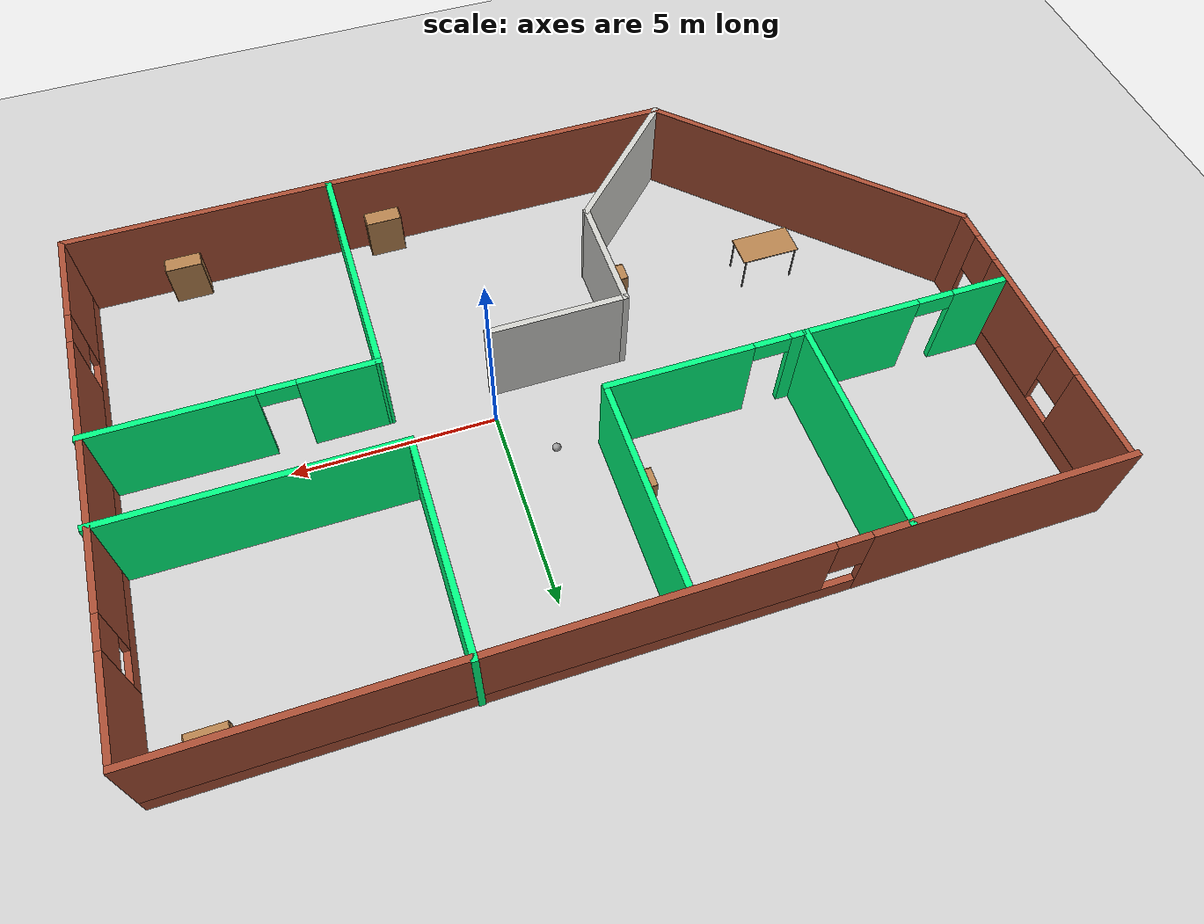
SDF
<sdf version="1.6">
 <world name="default">
  <plugin name="hello" filename="libhello.so"/>
  <light name="sun" type="directional">
   <pose>0 0 10 0 -0 0</pose>
   <diffuse>0.8 0.8 0.8 1</diffuse>
   <specular>0.2 0.2 0.2 1</specular>
   <attenuation>
    <range>1000</range>
    <constant>0.9</constant>
    <linear>0.01</linear>
    <quadratic>0.001</quadratic>
   </attenuation>
   <direction>-0.5 0.1 -0.9</direction>
  </light>
  <model name="ground_plane">
   <static>1</static>
   <link name="link">
    <collision name="collision">
     <geometry><plane><normal>0 0 1</normal><size>100 100</size></plane></geometry>
     <surface>
      <contact><collide_bitmask>65535</collide_bitmask></contact>
      <friction><ode><mu>100</mu><mu2>50</mu2></ode></friction>
     </surface>
    </collision>
    <visual name="visual">
     <cast_shadows>0</cast_shadows>
     <geometry><plane><normal>0 0 1</normal><size>100 100</size></plane></geometry>
     <material>
      <script><uri>file://media/materials/scripts/gazebo.material</uri><name>Gazebo/Grey</name></script>
     </material>
    </visual>
   </link>
  </model>
  <gravity>0 0 -9.8</gravity>
  <magnetic_field>6e-06 2.3e-05 -4.2e-05</magnetic_field>
  <atmosphere type="adiabatic"/>
  <physics name="default_physics" default="0" type="ode">
   <max_step_size>0.001</max_step_size>
   <real_time_factor>1</real_time_factor>
   <real_time_update_rate>1000</real_time_update_rate>
  </physics>
  <scene><ambient>0.4 0.4 0.4 1</ambient><background>0.7 0.7 0.7 1</background><shadows>1</shadows></scene>
  <spherical_coordinates>
   <surface_model>EARTH_WGS84</surface_model>
   <latitude_deg>0</latitude_deg>
   <longitude_deg>0</longitude_deg>
   <elevation>0</elevation>
   <heading_deg>0</heading_deg>
  </spherical_coordinates>
  <model name="mybuilding">
   <pose>-1.67201 0.0074 0 0 -0 0</pose>
   <link name="Door_3">
    <collision name="Door_3_Collision">
     <geometry><box><size>0.9 0.17 2</size></box></geometry>
     <pose>0 0 1 0 -0 0</pose>
    </collision>
    <visual name="Door_3_Visual">
     <pose>0 0 1 0 -0 0</pose>
     <geometry><box><size>0.9 0.17 2</size></box></geometry>
     <material>
      <script><uri>file://media/materials/scripts/gazebo.material</uri><name>Gazebo/Grey</name></script>
     </material>
    </visual>
    <pose>5.32033 1.38259 0 0 -0 0</pose>
   </link>
   <link name="Wall_10">
    <pose>-7.95176 1.44932 0 0 -0 3.14159</pose>
    <visual name="Wall_10_Visual_0">
     <pose>-1.15845 0 1.25 0 -0 0</pose>
     <geometry><box><size>2.93311 0.15 2.5</size></box></geometry>
     <material>
      <script><uri>file://media/materials/scripts/gazebo.material</uri><name>Gazebo/Grey</name></script>
      <ambient>0 1 0.498039 1</ambient>
     </material>
     <meta><layer>0</layer></meta>
    </visual>
    <collision name="Wall_10_Collision_0">
     <geometry><box><size>2.93311 0.15 2.5</size></box></geometry>
     <pose>-1.15845 0 1.25 0 -0 0</pose>
    </collision>
    <visual name="Wall_10_Visual_1">
     <pose>1.91655 0 1.25 0 -0 0</pose>
     <geometry><box><size>1.41689 0.15 2.5</size></box></geometry>
     <material>
      <script><uri>file://media/materials/scripts/gazebo.material</uri><name>Gazebo/Grey</name></script>
      <ambient>0 1 0.498039 1</ambient>
     </material>
     <meta><layer>0</layer></meta>
    </visual>
    <collision name="Wall_10_Collision_1">
     <geometry><box><size>1.41689 0.15 2.5</size></box></geometry>
     <pose>1.91655 0 1.25 0 -0 0</pose>
    </collision>
    <visual name="Wall_10_Visual_2">
     <pose>0.758107 0 2.25 0 -0 0</pose>
     <geometry><box><size>0.9 0.15 0.5</size></box></geometry>
     <material>
      <script><uri>file://media/materials/scripts/gazebo.material</uri><name>Gazebo/Grey</name></script>
      <ambient>0 1 0.498039 1</ambient>
     </material>
     <meta><layer>0</layer></meta>
    </visual>
    <collision name="Wall_10_Collision_2">
     <geometry><box><size>0.9 0.15 0.5</size></box></geometry>
     <pose>0.758107 0 2.25 0 -0 0</pose>
    </collision>
   </link>
   <link name="Wall_12">
    <pose>-2.97676 1.44932 0 0 -0 0</pose>
    <visual name="Wall_12_Visual_0">
     <pose>-2.2652 0 1.25 0 -0 0</pose>
     <geometry><box><size>0.469596 0.15 2.5</size></box></geometry>
     <material>
      <script><uri>file://media/materials/scripts/gazebo.material</uri><name>Gazebo/Grey</name></script>
      <ambient>0 1 0.498039 1</ambient>
     </material>
     <meta><layer>0</layer></meta>
    </visual>
    <collision name="Wall_12_Collision_0">
     <geometry><box><size>0.469596 0.15 2.5</size></box></geometry>
     <pose>-2.2652 0 1.25 0 -0 0</pose>
    </collision>
    <visual name="Wall_12_Visual_1">
     <pose>0.684798 0 1.25 0 -0 0</pose>
     <geometry><box><size>3.6304 0.15 2.5</size></box></geometry>
     <material>
      <script><uri>file://media/materials/scripts/gazebo.material</uri><name>Gazebo/Grey</name></script>
      <ambient>0 1 0.498039 1</ambient>
     </material>
     <meta><layer>0</layer></meta>
    </visual>
    <collision name="Wall_12_Collision_1">
     <geometry><box><size>3.6304 0.15 2.5</size></box></geometry>
     <pose>0.684798 0 1.25 0 -0 0</pose>
    </collision>
    <visual name="Wall_12_Visual_2">
     <pose>-1.5804 0 2.25 0 -0 0</pose>
     <geometry><box><size>0.9 0.15 0.5</size></box></geometry>
     <material>
      <script><uri>file://media/materials/scripts/gazebo.material</uri><name>Gazebo/Grey</name></script>
      <ambient>0 1 0.498039 1</ambient>
     </material>
     <meta><layer>0</layer></meta>
    </visual>
    <collision name="Wall_12_Collision_2">
     <geometry><box><size>0.9 0.15 0.5</size></box></geometry>
     <pose>-1.5804 0 2.25 0 -0 0</pose>
    </collision>
   </link>
   <link name="Wall_13">
    <collision name="Wall_13_Collision">
     <geometry><box><size>5.25 0.15 2.5</size></box></geometry>
     <pose>0 0 1.25 0 -0 0</pose>
    </collision>
    <visual name="Wall_13_Visual">
     <pose>0 0 1.25 0 -0 0</pose>
     <geometry><box><size>5.25 0.15 2.5</size></box></geometry>
     <material>
      <script><uri>file://media/materials/scripts/gazebo.material</uri><name>Gazebo/Grey</name></script>
      <ambient>0 1 0.498039 1</ambient>
     </material>
     <meta><layer>0</layer></meta>
    </visual>
    <pose>-0.551764 3.99932 0 0 -0 1.5708</pose>
   </link>
   <link name="Wall_15">
    <collision name="Wall_15_Collision">
     <geometry><box><size>5.25 0.15 2.5</size></box></geometry>
     <pose>0 0 1.25 0 -0 0</pose>
    </collision>
    <visual name="Wall_15_Visual">
     <pose>0 0 1.25 0 -0 0</pose>
     <geometry><box><size>5.25 0.15 2.5</size></box></geometry>
     <material>
      <script><uri>file://media/materials/scripts/gazebo.material</uri><name>Gazebo/Grey</name></script>
      <ambient>0 1 0.498039 1</ambient>
     </material>
     <meta><layer>0</layer></meta>
    </visual>
    <pose>3.86573 4.02722 0 0 0 -1.5708</pose>
   </link>
   <link name="Wall_16">
    <collision name="Wall_16_Collision">
     <geometry><box><size>7 0.15 2.5</size></box></geometry>
     <pose>0 0 1.25 0 -0 0</pose>
    </collision>
    <visual name="Wall_16_Visual">
     <pose>0 0 1.25 0 -0 0</pose>
     <geometry><box><size>7 0.15 2.5</size></box></geometry>
     <material>
      <script><uri>file://media/materials/scripts/gazebo.material</uri><name>Gazebo/Grey</name></script>
      <ambient>0 1 0.498039 1</ambient>
     </material>
     <meta><layer>0</layer></meta>
    </visual>
    <pose>7.29073 1.47722 0 0 -0 0</pose>
   </link>
   <link name="Wall_18">
    <pose>7.3796 -0.753441 0 0 -0 3.14159</pose>
    <visual name="Wall_18_Visual_0">
     <pose>-1.41679 0 1.25 0 -0 0</pose>
     <geometry><box><size>3.91643 0.15 2.5</size></box></geometry>
     <material>
      <script><uri>file://media/materials/scripts/gazebo.material</uri><name>Gazebo/Grey</name></script>
      <ambient>0 1 0.498039 1</ambient>
     </material>
     <meta><layer>0</layer></meta>
    </visual>
    <collision name="Wall_18_Collision_0">
     <geometry><box><size>3.91643 0.15 2.5</size></box></geometry>
     <pose>-1.41679 0 1.25 0 -0 0</pose>
    </collision>
    <visual name="Wall_18_Visual_1">
     <pose>2.40821 0 1.25 0 -0 0</pose>
     <geometry><box><size>1.93357 0.15 2.5</size></box></geometry>
     <material>
      <script><uri>file://media/materials/scripts/gazebo.material</uri><name>Gazebo/Grey</name></script>
      <ambient>0 1 0.498039 1</ambient>
     </material>
     <meta><layer>0</layer></meta>
    </visual>
    <collision name="Wall_18_Collision_1">
     <geometry><box><size>1.93357 0.15 2.5</size></box></geometry>
     <pose>2.40821 0 1.25 0 -0 0</pose>
    </collision>
    <visual name="Wall_18_Visual_2">
     <pose>0.991428 0 2.25 0 -0 0</pose>
     <geometry><box><size>0.9 0.15 0.5</size></box></geometry>
     <material>
      <script><uri>file://media/materials/scripts/gazebo.material</uri><name>Gazebo/Grey</name></script>
      <ambient>0 1 0.498039 1</ambient>
     </material>
     <meta><layer>0</layer></meta>
    </visual>
    <collision name="Wall_18_Collision_2">
     <geometry><box><size>0.9 0.15 0.5</size></box></geometry>
     <pose>0.991428 0 2.25 0 -0 0</pose>
    </collision>
   </link>
   <link name="Wall_19">
    <collision name="Wall_19_Collision">
     <geometry><box><size>5.88375 0.15 2.5</size></box></geometry>
     <pose>0 0 1.25 0 -0 0</pose>
    </collision>
    <visual name="Wall_19_Visual">
     <pose>0 0 1.25 0 -0 0</pose>
     <geometry><box><size>5.88375 0.15 2.5</size></box></geometry>
     <material>
      <script><uri>file://media/materials/scripts/gazebo.material</uri><name>Gazebo/Grey</name></script>
      <ambient>0 1 0.498039 1</ambient>
     </material>
     <meta><layer>0</layer></meta>
    </visual>
    <pose>4.08291 -3.62031 0 0 0 -1.56964</pose>
   </link>
   <link name="Wall_21">
    <collision name="Wall_21_Collision">
     <geometry><box><size>4.25 0.15 2.5</size></box></geometry>
     <pose>0 0 1.25 0 -0 0</pose>
    </collision>
    <visual name="Wall_21_Visual">
     <pose>0 0 1.25 0 -0 0</pose>
     <geometry><box><size>4.25 0.15 2.5</size></box></geometry>
     <material>
      <script><uri>file://media/materials/scripts/gazebo.material</uri><name>Gazebo/CeilingTiled</name></script>
      <ambient>0 0 1 1</ambient>
     </material>
     <meta><layer>0</layer></meta>
    </visual>
    <pose>-3.26617 -5.09658 0 0 -0 0.785398</pose>
   </link>
   <link name="Wall_22">
    <collision name="Wall_22_Collision">
     <geometry><box><size>3 0.15 2.5</size></box></geometry>
     <pose>0 0 1.25 0 -0 0</pose>
    </collision>
    <visual name="Wall_22_Visual">
     <pose>0 0 1.25 0 -0 0</pose>
     <geometry><box><size>3 0.15 2.5</size></box></geometry>
     <material>
      <script><uri>file://media/materials/scripts/gazebo.material</uri><name>Gazebo/CeilingTiled</name></script>
      <ambient>0 0 1 1</ambient>
     </material>
     <meta><layer>0</layer></meta>
    </visual>
    <pose>-1.8166 -2.22201 0 0 -0 1.5708</pose>
   </link>
   <link name="Wall_23">
    <collision name="Wall_23_Collision">
     <geometry><box><size>3.5 0.15 2.5</size></box></geometry>
     <pose>0 0 1.25 0 -0 0</pose>
    </collision>
    <visual name="Wall_23_Visual">
     <pose>0 0 1.25 0 -0 0</pose>
     <geometry><box><size>3.5 0.15 2.5</size></box></geometry>
     <material>
      <script><uri>file://media/materials/scripts/gazebo.material</uri><name>Gazebo/CeilingTiled</name></script>
      <ambient>0 0 1 1</ambient>
     </material>
     <meta><layer>0</layer></meta>
    </visual>
    <pose>-0.141597 -0.797013 0 0 -0 0</pose>
   </link>
   <link name="Wall_3">
    <pose>-0.040735 6.55385 0 0 -0 0</pose>
    <visual name="Wall_3_Visual_0">
     <pose>-7.61075 0 1.25 0 -0 0</pose>
     <geometry><box><size>6.2785 0.15 2.5</size></box></geometry>
     <material>
      <script><uri>file://media/materials/scripts/gazebo.material</uri><name>Gazebo/Bricks</name></script>
      <ambient>0.996078 0.47451 0.0196078 1</ambient>
     </material>
     <meta><layer>0</layer></meta>
    </visual>
    <collision name="Wall_3_Collision_0">
     <geometry><box><size>6.2785 0.15 2.5</size></box></geometry>
     <pose>-7.61075 0 1.25 0 -0 0</pose>
    </collision>
    <visual name="Wall_3_Visual_1">
     <pose>3.13925 0 0.25 0 -0 0</pose>
     <geometry><box><size>15.2215 0.15 0.5</size></box></geometry>
     <material>
      <script><uri>file://media/materials/scripts/gazebo.material</uri><name>Gazebo/Bricks</name></script>
      <ambient>0.996078 0.47451 0.0196078 1</ambient>
     </material>
     <meta><layer>0</layer></meta>
    </visual>
    <collision name="Wall_3_Collision_1">
     <geometry><box><size>15.2215 0.15 0.5</size></box></geometry>
     <pose>3.13925 0 0.25 0 -0 0</pose>
    </collision>
    <visual name="Wall_3_Visual_2">
     <pose>3.53925 0 1.5 0 -0 0</pose>
     <geometry><box><size>14.4215 0.15 2</size></box></geometry>
     <material>
      <script><uri>file://media/materials/scripts/gazebo.material</uri><name>Gazebo/Bricks</name></script>
      <ambient>0.996078 0.47451 0.0196078 1</ambient>
     </material>
     <meta><layer>0</layer></meta>
    </visual>
    <collision name="Wall_3_Collision_2">
     <geometry><box><size>14.4215 0.15 2</size></box></geometry>
     <pose>3.53925 0 1.5 0 -0 0</pose>
    </collision>
    <visual name="Wall_3_Visual_3">
     <pose>-4.0715 0 1.9 0 -0 0</pose>
     <geometry><box><size>0.8 0.15 1.2</size></box></geometry>
     <material>
      <script><uri>file://media/materials/scripts/gazebo.material</uri><name>Gazebo/Bricks</name></script>
      <ambient>0.996078 0.47451 0.0196078 1</ambient>
     </material>
     <meta><layer>0</layer></meta>
    </visual>
    <collision name="Wall_3_Collision_3">
     <geometry><box><size>0.8 0.15 1.2</size></box></geometry>
     <pose>-4.0715 0 1.9 0 -0 0</pose>
    </collision>
   </link>
   <link name="Wall_4">
    <pose>10.6343 0.003849 0 0 0 -1.5708</pose>
    <visual name="Wall_4_Visual_0">
     <pose>-5.43285 0 1.25 0 -0 0</pose>
     <geometry><box><size>2.3843 0.15 2.5</size></box></geometry>
     <material>
      <script><uri>file://media/materials/scripts/gazebo.material</uri><name>Gazebo/Bricks</name></script>
      <ambient>0.996078 0.47451 0.0196078 1</ambient>
     </material>
     <meta><layer>0</layer></meta>
    </visual>
    <collision name="Wall_4_Collision_0">
     <geometry><box><size>2.3843 0.15 2.5</size></box></geometry>
     <pose>-5.43285 0 1.25 0 -0 0</pose>
    </collision>
    <visual name="Wall_4_Visual_1">
     <pose>1.19215 0 0.25 0 -0 0</pose>
     <geometry><box><size>10.8657 0.15 0.5</size></box></geometry>
     <material>
      <script><uri>file://media/materials/scripts/gazebo.material</uri><name>Gazebo/Bricks</name></script>
      <ambient>0.996078 0.47451 0.0196078 1</ambient>
     </material>
     <meta><layer>0</layer></meta>
    </visual>
    <collision name="Wall_4_Collision_1">
     <geometry><box><size>10.8657 0.15 0.5</size></box></geometry>
     <pose>1.19215 0 0.25 0 -0 0</pose>
    </collision>
    <visual name="Wall_4_Visual_2">
     <pose>0.000551 0 1.5 0 -0 0</pose>
     <geometry><box><size>6.8825 0.15 2</size></box></geometry>
     <material>
      <script><uri>file://media/materials/scripts/gazebo.material</uri><name>Gazebo/Bricks</name></script>
      <ambient>0.996078 0.47451 0.0196078 1</ambient>
     </material>
     <meta><layer>0</layer></meta>
    </visual>
    <collision name="Wall_4_Collision_2">
     <geometry><box><size>6.8825 0.15 2</size></box></geometry>
     <pose>0.000551 0 1.5 0 -0 0</pose>
    </collision>
    <visual name="Wall_4_Visual_3">
     <pose>5.4334 0 1.5 0 -0 0</pose>
     <geometry><box><size>2.3832 0.15 2</size></box></geometry>
     <material>
      <script><uri>file://media/materials/scripts/gazebo.material</uri><name>Gazebo/Bricks</name></script>
      <ambient>0.996078 0.47451 0.0196078 1</ambient>
     </material>
     <meta><layer>0</layer></meta>
    </visual>
    <collision name="Wall_4_Collision_3">
     <geometry><box><size>2.3832 0.15 2</size></box></geometry>
     <pose>5.4334 0 1.5 0 -0 0</pose>
    </collision>
    <visual name="Wall_4_Visual_4">
     <pose>-3.8407 0 1.9 0 -0 0</pose>
     <geometry><box><size>0.8 0.15 1.2</size></box></geometry>
     <material>
      <script><uri>file://media/materials/scripts/gazebo.material</uri><name>Gazebo/Bricks</name></script>
      <ambient>0.996078 0.47451 0.0196078 1</ambient>
     </material>
     <meta><layer>0</layer></meta>
    </visual>
    <collision name="Wall_4_Collision_4">
     <geometry><box><size>0.8 0.15 1.2</size></box></geometry>
     <pose>-3.8407 0 1.9 0 -0 0</pose>
    </collision>
    <visual name="Wall_4_Visual_5">
     <pose>3.8418 0 1.9 0 -0 0</pose>
     <geometry><box><size>0.8 0.15 1.2</size></box></geometry>
     <material>
      <script><uri>file://media/materials/scripts/gazebo.material</uri><name>Gazebo/Bricks</name></script>
      <ambient>0.996078 0.47451 0.0196078 1</ambient>
     </material>
     <meta><layer>0</layer></meta>
    </visual>
    <collision name="Wall_4_Collision_5">
     <geometry><box><size>0.8 0.15 1.2</size></box></geometry>
     <pose>3.8418 0 1.9 0 -0 0</pose>
    </collision>
   </link>
   <link name="Wall_5">
    <collision name="Wall_5_Collision">
     <geometry><box><size>15.5 0.15 2.5</size></box></geometry>
     <pose>0 0 1.25 0 -0 0</pose>
    </collision>
    <visual name="Wall_5_Visual">
     <pose>0 0 1.25 0 -0 0</pose>
     <geometry><box><size>15.5 0.15 2.5</size></box></geometry>
     <material>
      <script><uri>file://media/materials/scripts/gazebo.material</uri><name>Gazebo/Bricks</name></script>
      <ambient>0.996078 0.47451 0.0196078 1</ambient>
     </material>
     <meta><layer>0</layer></meta>
    </visual>
    <pose>2.95926 -6.54615 0 0 -0 3.14159</pose>
   </link>
   <link name="Wall_6">
    <collision name="Wall_6_Collision">
     <geometry><box><size>8.5 0.15 2.5</size></box></geometry>
     <pose>0 0 1.25 0 -0 0</pose>
    </collision>
    <visual name="Wall_6_Visual">
     <pose>0 0 1.25 0 -0 0</pose>
     <geometry><box><size>8.5 0.15 2.5</size></box></geometry>
     <material>
      <script><uri>file://media/materials/scripts/gazebo.material</uri><name>Gazebo/Bricks</name></script>
      <ambient>0.996078 0.47451 0.0196078 1</ambient>
     </material>
     <meta><layer>0</layer></meta>
    </visual>
    <pose>-7.66791 -3.59398 0 0 -0 2.35619</pose>
   </link>
   <link name="Wall_7">
    <pose>-10.6201 2.90819 0 0 -0 1.5708</pose>
    <visual name="Wall_7_Visual_0">
     <pose>-3.23506 0 1.25 0 -0 0</pose>
     <geometry><box><size>0.779871 0.15 2.5</size></box></geometry>
     <material>
      <script><uri>file://media/materials/scripts/gazebo.material</uri><name>Gazebo/Bricks</name></script>
      <ambient>0.996078 0.47451 0.0196078 1</ambient>
     </material>
     <meta><layer>0</layer></meta>
    </visual>
    <collision name="Wall_7_Collision_0">
     <geometry><box><size>0.779871 0.15 2.5</size></box></geometry>
     <pose>-3.23506 0 1.25 0 -0 0</pose>
    </collision>
    <visual name="Wall_7_Visual_1">
     <pose>0.389936 0 0.25 0 -0 0</pose>
     <geometry><box><size>6.47013 0.15 0.5</size></box></geometry>
     <material>
      <script><uri>file://media/materials/scripts/gazebo.material</uri><name>Gazebo/Bricks</name></script>
      <ambient>0.996078 0.47451 0.0196078 1</ambient>
     </material>
     <meta><layer>0</layer></meta>
    </visual>
    <collision name="Wall_7_Collision_1">
     <geometry><box><size>6.47013 0.15 0.5</size></box></geometry>
     <pose>0.389936 0 0.25 0 -0 0</pose>
    </collision>
    <visual name="Wall_7_Visual_2">
     <pose>-0.68023 0 1.5 0 -0 0</pose>
     <geometry><box><size>2.7298 0.15 2</size></box></geometry>
     <material>
      <script><uri>file://media/materials/scripts/gazebo.material</uri><name>Gazebo/Bricks</name></script>
      <ambient>0.996078 0.47451 0.0196078 1</ambient>
     </material>
     <meta><layer>0</layer></meta>
    </visual>
    <collision name="Wall_7_Collision_2">
     <geometry><box><size>2.7298 0.15 2</size></box></geometry>
     <pose>-0.68023 0 1.5 0 -0 0</pose>
    </collision>
    <visual name="Wall_7_Visual_3">
     <pose>2.55483 0 1.5 0 -0 0</pose>
     <geometry><box><size>2.14033 0.15 2</size></box></geometry>
     <material>
      <script><uri>file://media/materials/scripts/gazebo.material</uri><name>Gazebo/Bricks</name></script>
      <ambient>0.996078 0.47451 0.0196078 1</ambient>
     </material>
     <meta><layer>0</layer></meta>
    </visual>
    <collision name="Wall_7_Collision_3">
     <geometry><box><size>2.14033 0.15 2</size></box></geometry>
     <pose>2.55483 0 1.5 0 -0 0</pose>
    </collision>
    <visual name="Wall_7_Visual_4">
     <pose>-2.44513 0 1.9 0 -0 0</pose>
     <geometry><box><size>0.8 0.15 1.2</size></box></geometry>
     <material>
      <script><uri>file://media/materials/scripts/gazebo.material</uri><name>Gazebo/Bricks</name></script>
      <ambient>0.996078 0.47451 0.0196078 1</ambient>
     </material>
     <meta><layer>0</layer></meta>
    </visual>
    <collision name="Wall_7_Collision_4">
     <geometry><box><size>0.8 0.15 1.2</size></box></geometry>
     <pose>-2.44513 0 1.9 0 -0 0</pose>
    </collision>
    <visual name="Wall_7_Visual_5">
     <pose>1.08467 0 1.9 0 -0 0</pose>
     <geometry><box><size>0.8 0.15 1.2</size></box></geometry>
     <material>
      <script><uri>file://media/materials/scripts/gazebo.material</uri><name>Gazebo/Bricks</name></script>
      <ambient>0.996078 0.47451 0.0196078 1</ambient>
     </material>
     <meta><layer>0</layer></meta>
    </visual>
    <collision name="Wall_7_Collision_5">
     <geometry><box><size>0.8 0.15 1.2</size></box></geometry>
     <pose>1.08467 0 1.9 0 -0 0</pose>
    </collision>
   </link>
   <link name="Wall_9">
    <collision name="Wall_9_Collision">
     <geometry><box><size>5.25 0.15 2.5</size></box></geometry>
     <pose>0 0 1.25 0 -0 0</pose>
    </collision>
    <visual name="Wall_9_Visual">
     <pose>0 0 1.25 0 -0 0</pose>
     <geometry><box><size>5.25 0.15 2.5</size></box></geometry>
     <material>
      <script><uri>file://media/materials/scripts/gazebo.material</uri><name>Gazebo/Grey</name></script>
      <ambient>0 1 0.498039 1</ambient>
     </material>
     <meta><layer>0</layer></meta>
    </visual>
    <pose>-5.40176 3.99932 0 0 0 -1.5708</pose>
   </link>
   <static>1</static>
  </model>
  <model name="cabinet">
   <static>1</static>
   <link name="cabinet_bottom_plate">
    <inertial>
     <pose>0 0 -1 0 -0 0</pose>
     <inertia><ixx>2.05</ixx><ixy>0</ixy><ixz>0</ixz><iyy>2.05</iyy><iyz>0</iyz><izz>2.05</izz></inertia>
     <mass>25</mass>
    </inertial>
    <collision name="cabinet_bottom_plate_geom">
     <pose>0 0 0.01 0 -0 0</pose>
     <geometry><box><size>0.45 0.45 0.02</size></box></geometry>
    </collision>
    <visual name="cabinet_bottom_plate_geom_visual">
     <pose>0 0 0.01 0 -0 0</pose>
     <geometry><box><size>0.45 0.45 0.02</size></box></geometry>
     <material>
      <script><uri>file://media/materials/scripts/gazebo.material</uri><name>Gazebo/Wood</name></script>
     </material>
    </visual>
    <collision name="cabinet_bottom_plate_geom_cabinet_back_plate">
     <pose>0.235 0 0.51 0 -0 0</pose>
     <geometry><box><size>0.02 0.45 1.02</size></box></geometry>
    </collision>
    <visual name="cabinet_bottom_plate_geom_cabinet_back_plate_visual">
     <pose>0.235 0 0.51 0 -0 0</pose>
     <geometry><box><size>0.02 0.45 1.02</size></box></geometry>
     <material>
      <script><uri>file://media/materials/scripts/gazebo.material</uri><name>Gazebo/Wood</name></script>
     </material>
    </visual>
    <collision name="cabinet_bottom_plate_geom_cabinet_left_plate">
     <pose>0 0.235 0.51 0 -0 0</pose>
     <geometry><box><size>0.45 0.02 1.02</size></box></geometry>
    </collision>
    <visual name="cabinet_bottom_plate_geom_cabinet_left_plate_visual">
     <pose>0 0.235 0.51 0 -0 0</pose>
     <geometry><box><size>0.45 0.02 1.02</size></box></geometry>
     <material>
      <script><uri>file://media/materials/scripts/gazebo.material</uri><name>Gazebo/Wood</name></script>
     </material>
    </visual>
    <collision name="cabinet_bottom_plate_geom_cabinet_middle_plate">
     <pose>0 0 0.51 0 -0 0</pose>
     <geometry><box><size>0.45 0.45 0.02</size></box></geometry>
    </collision>
    <visual name="cabinet_bottom_plate_geom_cabinet_middle_plate_visual">
     <pose>0 0 0.51 0 -0 0</pose>
     <geometry><box><size>0.45 0.45 0.02</size></box></geometry>
     <material>
      <script><uri>file://media/materials/scripts/gazebo.material</uri><name>Gazebo/Wood</name></script>
     </material>
    </visual>
    <collision name="cabinet_bottom_plate_geom_cabinet_right_plate">
     <pose>0 -0.235 0.51 0 -0 0</pose>
     <geometry><box><size>0.45 0.02 1.02</size></box></geometry>
    </collision>
    <visual name="cabinet_bottom_plate_geom_cabinet_right_plate_visual">
     <pose>0 -0.235 0.51 0 -0 0</pose>
     <geometry><box><size>0.45 0.02 1.02</size></box></geometry>
     <material>
      <script><uri>file://media/materials/scripts/gazebo.material</uri><name>Gazebo/Wood</name></script>
     </material>
    </visual>
    <collision name="cabinet_bottom_plate_geom_cabinet_top_plate">
     <pose>0 0 1.01 0 -0 0</pose>
     <geometry><box><size>0.45 0.45 0.02</size></box></geometry>
    </collision>
    <visual name="cabinet_bottom_plate_geom_cabinet_top_plate_visual">
     <pose>0 0 1.01 0 -0 0</pose>
     <geometry><box><size>0.45 0.45 0.02</size></box></geometry>
     <material>
      <script><uri>file://media/materials/scripts/gazebo.material</uri><name>Gazebo/Wood</name></script>
     </material>
    </visual>
   </link>
   <pose>-2.60432 3.17505 0 0 -0 0</pose>
  </model>
  <model name="table">
   <static>1</static>
   <link name="link">
    <collision name="surface">
     <pose>0 0 1 0 -0 0</pose>
     <geometry><box><size>1.5 0.8 0.03</size></box></geometry>
     <surface><friction><ode><mu>0.6</mu><mu2>0.6</mu2></ode></friction></surface>
    </collision>
    <visual name="visual1">
     <pose>0 0 1 0 -0 0</pose>
     <geometry><box><size>1.5 0.8 0.03</size></box></geometry>
     <material>
      <script><uri>file://media/materials/scripts/gazebo.material</uri><name>Gazebo/Wood</name></script>
     </material>
    </visual>
    <collision name="front_left_leg">
     <pose>0.68 0.38 0.5 0 -0 0</pose>
     <geometry><cylinder><radius>0.02</radius><length>1</length></cylinder></geometry>
    </collision>
    <visual name="front_left_leg">
     <pose>0.68 0.38 0.5 0 -0 0</pose>
     <geometry><cylinder><radius>0.02</radius><length>1</length></cylinder></geometry>
     <material>
      <script><uri>file://media/materials/scripts/gazebo.material</uri><name>Gazebo/Grey</name></script>
     </material>
    </visual>
    <collision name="front_right_leg">
     <pose>0.68 -0.38 0.5 0 -0 0</pose>
     <geometry><cylinder><radius>0.02</radius><length>1</length></cylinder></geometry>
    </collision>
    <visual name="front_right_leg">
     <pose>0.68 -0.38 0.5 0 -0 0</pose>
     <geometry><cylinder><radius>0.02</radius><length>1</length></cylinder></geometry>
     <material>
      <script><uri>file://media/materials/scripts/gazebo.material</uri><name>Gazebo/Grey</name></script>
     </material>
    </visual>
    <collision name="back_right_leg">
     <pose>-0.68 -0.38 0.5 0 -0 0</pose>
     <geometry><cylinder><radius>0.02</radius><length>1</length></cylinder></geometry>
    </collision>
    <visual name="back_right_leg">
     <pose>-0.68 -0.38 0.5 0 -0 0</pose>
     <geometry><cylinder><radius>0.02</radius><length>1</length></cylinder></geometry>
     <material>
      <script><uri>file://media/materials/scripts/gazebo.material</uri><name>Gazebo/Grey</name></script>
     </material>
    </visual>
    <collision name="back_left_leg">
     <pose>-0.68 0.38 0.5 0 -0 0</pose>
     <geometry><cylinder><radius>0.02</radius><length>1</length></cylinder></geometry>
    </collision>
    <visual name="back_left_leg">
     <pose>-0.68 0.38 0.5 0 -0 0</pose>
     <geometry><cylinder><radius>0.02</radius><length>1</length></cylinder></geometry>
     <material>
      <script><uri>file://media/materials/scripts/gazebo.material</uri><name>Gazebo/Grey</name></script>
     </material>
    </visual>
   </link>
   <pose>-7.97778 -2.39523 0 0 -0 0</pose>
  </model>
  <model name="cabinet_0">
   <static>1</static>
   <link name="cabinet_bottom_plate">
    <inertial>
     <pose>0 0 -1 0 -0 0</pose>
     <inertia><ixx>2.05</ixx><ixy>0</ixy><ixz>0</ixz><iyy>2.05</iyy><iyz>0</iyz><izz>2.05</izz></inertia>
     <mass>25</mass>
    </inertial>
    <collision name="cabinet_bottom_plate_geom">
     <pose>0 0 0.01 0 -0 0</pose>
     <geometry><box><size>0.45 0.45 0.02</size></box></geometry>
    </collision>
    <visual name="cabinet_bottom_plate_geom_visual">
     <pose>0 0 0.01 0 -0 0</pose>
     <geometry><box><size>0.45 0.45 0.02</size></box></geometry>
     <material>
      <script><uri>file://media/materials/scripts/gazebo.material</uri><name>Gazebo/Wood</name></script>
     </material>
    </visual>
    <collision name="cabinet_bottom_plate_geom_cabinet_back_plate">
     <pose>0.235 0 0.51 0 -0 0</pose>
     <geometry><box><size>0.02 0.45 1.02</size></box></geometry>
    </collision>
    <visual name="cabinet_bottom_plate_geom_cabinet_back_plate_visual">
     <pose>0.235 0 0.51 0 -0 0</pose>
     <geometry><box><size>0.02 0.45 1.02</size></box></geometry>
     <material>
      <script><uri>file://media/materials/scripts/gazebo.material</uri><name>Gazebo/Wood</name></script>
     </material>
    </visual>
    <collision name="cabinet_bottom_plate_geom_cabinet_left_plate">
     <pose>0 0.235 0.51 0 -0 0</pose>
     <geometry><box><size>0.45 0.02 1.02</size></box></geometry>
    </collision>
    <visual name="cabinet_bottom_plate_geom_cabinet_left_plate_visual">
     <pose>0 0.235 0.51 0 -0 0</pose>
     <geometry><box><size>0.45 0.02 1.02</size></box></geometry>
     <material>
      <script><uri>file://media/materials/scripts/gazebo.material</uri><name>Gazebo/Wood</name></script>
     </material>
    </visual>
    <collision name="cabinet_bottom_plate_geom_cabinet_middle_plate">
     <pose>0 0 0.51 0 -0 0</pose>
     <geometry><box><size>0.45 0.45 0.02</size></box></geometry>
    </collision>
    <visual name="cabinet_bottom_plate_geom_cabinet_middle_plate_visual">
     <pose>0 0 0.51 0 -0 0</pose>
     <geometry><box><size>0.45 0.45 0.02</size></box></geometry>
     <material>
      <script><uri>file://media/materials/scripts/gazebo.material</uri><name>Gazebo/Wood</name></script>
     </material>
    </visual>
    <collision name="cabinet_bottom_plate_geom_cabinet_right_plate">
     <pose>0 -0.235 0.51 0 -0 0</pose>
     <geometry><box><size>0.45 0.02 1.02</size></box></geometry>
    </collision>
    <visual name="cabinet_bottom_plate_geom_cabinet_right_plate_visual">
     <pose>0 -0.235 0.51 0 -0 0</pose>
     <geometry><box><size>0.45 0.02 1.02</size></box></geometry>
     <material>
      <script><uri>file://media/materials/scripts/gazebo.material</uri><name>Gazebo/Wood</name></script>
     </material>
    </visual>
    <collision name="cabinet_bottom_plate_geom_cabinet_top_plate">
     <pose>0 0 1.01 0 -0 0</pose>
     <geometry><box><size>0.45 0.45 0.02</size></box></geometry>
    </collision>
    <visual name="cabinet_bottom_plate_geom_cabinet_top_plate_visual">
     <pose>0 0 1.01 0 -0 0</pose>
     <geometry><box><size>0.45 0.45 0.02</size></box></geometry>
     <material>
      <script><uri>file://media/materials/scripts/gazebo.material</uri><name>Gazebo/Wood</name></script>
     </material>
    </visual>
   </link>
   <pose>-4.00583 -2.67828 0 0 -0 0</pose>
  </model>
  <model name="bookshelf">
   <static>1</static>
   <link name="link">
    <inertial><mass>1</mass></inertial>
    <collision name="back">
     <pose>0 0.005 0.6 0 -0 0</pose>
     <geometry><box><size>0.9 0.01 1.2</size></box></geometry>
    </collision>
    <visual name="visual1">
     <pose>0 0.005 0.6 0 -0 0</pose>
     <geometry><box><size>0.9 0.01 1.2</size></box></geometry>
     <material>
      <script><uri>file://media/materials/scripts/gazebo.material</uri><name>Gazebo/Wood</name></script>
     </material>
    </visual>
    <collision name="left_side">
     <pose>0.45 -0.195 0.6 0 -0 0</pose>
     <geometry><box><size>0.02 0.4 1.2</size></box></geometry>
    </collision>
    <visual name="visual2">
     <pose>0.45 -0.195 0.6 0 -0 0</pose>
     <geometry><box><size>0.02 0.4 1.2</size></box></geometry>
     <material>
      <script><uri>file://media/materials/scripts/gazebo.material</uri><name>Gazebo/Wood</name></script>
     </material>
    </visual>
    <collision name="right_side">
     <pose>-0.45 -0.195 0.6 0 -0 0</pose>
     <geometry><box><size>0.02 0.4 1.2</size></box></geometry>
    </collision>
    <visual name="visual3">
     <pose>-0.45 -0.195 0.6 0 -0 0</pose>
     <geometry><box><size>0.02 0.4 1.2</size></box></geometry>
     <material>
      <script><uri>file://media/materials/scripts/gazebo.material</uri><name>Gazebo/Wood</name></script>
     </material>
    </visual>
    <collision name="bottom">
     <pose>0 -0.195 0.03 0 -0 0</pose>
     <geometry><box><size>0.88 0.4 0.06</size></box></geometry>
    </collision>
    <visual name="visual4">
     <pose>0 -0.195 0.03 0 -0 0</pose>
     <geometry><box><size>0.88 0.4 0.06</size></box></geometry>
     <material>
      <script><uri>file://media/materials/scripts/gazebo.material</uri><name>Gazebo/Wood</name></script>
     </material>
    </visual>
    <collision name="top">
     <pose>0 -0.195 1.19 0 -0 0</pose>
     <geometry><box><size>0.88 0.4 0.02</size></box></geometry>
    </collision>
    <visual name="visual5">
     <pose>0 -0.195 1.19 0 -0 0</pose>
     <geometry><box><size>0.88 0.4 0.02</size></box></geometry>
     <material>
      <script><uri>file://media/materials/scripts/gazebo.material</uri><name>Gazebo/Wood</name></script>
     </material>
    </visual>
    <collision name="low_shelf">
     <pose>0 -0.195 0.43 0 -0 0</pose>
     <geometry><box><size>0.88 0.4 0.02</size></box></geometry>
    </collision>
    <visual name="visual6">
     <pose>0 -0.195 0.43 0 -0 0</pose>
     <geometry><box><size>0.88 0.4 0.02</size></box></geometry>
     <material>
      <script><uri>file://media/materials/scripts/gazebo.material</uri><name>Gazebo/Wood</name></script>
     </material>
    </visual>
    <collision name="high_shelf">
     <pose>0 -0.195 0.8 0 -0 0</pose>
     <geometry><box><size>0.88 0.4 0.02</size></box></geometry>
    </collision>
    <visual name="visual7">
     <pose>0 -0.195 0.8 0 -0 0</pose>
     <geometry><box><size>0.88 0.4 0.02</size></box></geometry>
     <material>
      <script><uri>file://media/materials/scripts/gazebo.material</uri><name>Gazebo/Wood</name></script>
     </material>
    </visual>
   </link>
   <pose>1.26275 -6.06976 0 0 -0 0</pose>
  </model>
  <model name="bookshelf_0">
   <static>1</static>
   <link name="link">
    <inertial><mass>1</mass></inertial>
    <collision name="back">
     <pose>0 0.005 0.6 0 -0 0</pose>
     <geometry><box><size>0.9 0.01 1.2</size></box></geometry>
    </collision>
    <visual name="visual1">
     <pose>0 0.005 0.6 0 -0 0</pose>
     <geometry><box><size>0.9 0.01 1.2</size></box></geometry>
     <material>
      <script><uri>file://media/materials/scripts/gazebo.material</uri><name>Gazebo/Wood</name></script>
     </material>
    </visual>
    <collision name="left_side">
     <pose>0.45 -0.195 0.6 0 -0 0</pose>
     <geometry><box><size>0.02 0.4 1.2</size></box></geometry>
    </collision>
    <visual name="visual2">
     <pose>0.45 -0.195 0.6 0 -0 0</pose>
     <geometry><box><size>0.02 0.4 1.2</size></box></geometry>
     <material>
      <script><uri>file://media/materials/scripts/gazebo.material</uri><name>Gazebo/Wood</name></script>
     </material>
    </visual>
    <collision name="right_side">
     <pose>-0.45 -0.195 0.6 0 -0 0</pose>
     <geometry><box><size>0.02 0.4 1.2</size></box></geometry>
    </collision>
    <visual name="visual3">
     <pose>-0.45 -0.195 0.6 0 -0 0</pose>
     <geometry><box><size>0.02 0.4 1.2</size></box></geometry>
     <material>
      <script><uri>file://media/materials/scripts/gazebo.material</uri><name>Gazebo/Wood</name></script>
     </material>
    </visual>
    <collision name="bottom">
     <pose>0 -0.195 0.03 0 -0 0</pose>
     <geometry><box><size>0.88 0.4 0.06</size></box></geometry>
    </collision>
    <visual name="visual4">
     <pose>0 -0.195 0.03 0 -0 0</pose>
     <geometry><box><size>0.88 0.4 0.06</size></box></geometry>
     <material>
      <script><uri>file://media/materials/scripts/gazebo.material</uri><name>Gazebo/Wood</name></script>
     </material>
    </visual>
    <collision name="top">
     <pose>0 -0.195 1.19 0 -0 0</pose>
     <geometry><box><size>0.88 0.4 0.02</size></box></geometry>
    </collision>
    <visual name="visual5">
     <pose>0 -0.195 1.19 0 -0 0</pose>
     <geometry><box><size>0.88 0.4 0.02</size></box></geometry>
     <material>
      <script><uri>file://media/materials/scripts/gazebo.material</uri><name>Gazebo/Wood</name></script>
     </material>
    </visual>
    <collision name="low_shelf">
     <pose>0 -0.195 0.43 0 -0 0</pose>
     <geometry><box><size>0.88 0.4 0.02</size></box></geometry>
    </collision>
    <visual name="visual6">
     <pose>0 -0.195 0.43 0 -0 0</pose>
     <geometry><box><size>0.88 0.4 0.02</size></box></geometry>
     <material>
      <script><uri>file://media/materials/scripts/gazebo.material</uri><name>Gazebo/Wood</name></script>
     </material>
    </visual>
    <collision name="high_shelf">
     <pose>0 -0.195 0.8 0 -0 0</pose>
     <geometry><box><size>0.88 0.4 0.02</size></box></geometry>
    </collision>
    <visual name="visual7">
     <pose>0 -0.195 0.8 0 -0 0</pose>
     <geometry><box><size>0.88 0.4 0.02</size></box></geometry>
     <material>
      <script><uri>file://media/materials/scripts/gazebo.material</uri><name>Gazebo/Wood</name></script>
     </material>
    </visual>
   </link>
   <pose>7.47357 6.22246 0 0 -0 0</pose>
  </model>
  <model name="bookshelf_1">
   <static>1</static>
   <link name="link">
    <inertial><mass>1</mass></inertial>
    <collision name="back">
     <pose>0 0.005 0.6 0 -0 0</pose>
     <geometry><box><size>0.9 0.01 1.2</size></box></geometry>
    </collision>
    <visual name="visual1">
     <pose>0 0.005 0.6 0 -0 0</pose>
     <geometry><box><size>0.9 0.01 1.2</size></box></geometry>
     <material>
      <script><uri>file://media/materials/scripts/gazebo.material</uri><name>Gazebo/Wood</name></script>
     </material>
    </visual>
    <collision name="left_side">
     <pose>0.45 -0.195 0.6 0 -0 0</pose>
     <geometry><box><size>0.02 0.4 1.2</size></box></geometry>
    </collision>
    <visual name="visual2">
     <pose>0.45 -0.195 0.6 0 -0 0</pose>
     <geometry><box><size>0.02 0.4 1.2</size></box></geometry>
     <material>
      <script><uri>file://media/materials/scripts/gazebo.material</uri><name>Gazebo/Wood</name></script>
     </material>
    </visual>
    <collision name="right_side">
     <pose>-0.45 -0.195 0.6 0 -0 0</pose>
     <geometry><box><size>0.02 0.4 1.2</size></box></geometry>
    </collision>
    <visual name="visual3">
     <pose>-0.45 -0.195 0.6 0 -0 0</pose>
     <geometry><box><size>0.02 0.4 1.2</size></box></geometry>
     <material>
      <script><uri>file://media/materials/scripts/gazebo.material</uri><name>Gazebo/Wood</name></script>
     </material>
    </visual>
    <collision name="bottom">
     <pose>0 -0.195 0.03 0 -0 0</pose>
     <geometry><box><size>0.88 0.4 0.06</size></box></geometry>
    </collision>
    <visual name="visual4">
     <pose>0 -0.195 0.03 0 -0 0</pose>
     <geometry><box><size>0.88 0.4 0.06</size></box></geometry>
     <material>
      <script><uri>file://media/materials/scripts/gazebo.material</uri><name>Gazebo/Wood</name></script>
     </material>
    </visual>
    <collision name="top">
     <pose>0 -0.195 1.19 0 -0 0</pose>
     <geometry><box><size>0.88 0.4 0.02</size></box></geometry>
    </collision>
    <visual name="visual5">
     <pose>0 -0.195 1.19 0 -0 0</pose>
     <geometry><box><size>0.88 0.4 0.02</size></box></geometry>
     <material>
      <script><uri>file://media/materials/scripts/gazebo.material</uri><name>Gazebo/Wood</name></script>
     </material>
    </visual>
    <collision name="low_shelf">
     <pose>0 -0.195 0.43 0 -0 0</pose>
     <geometry><box><size>0.88 0.4 0.02</size></box></geometry>
    </collision>
    <visual name="visual6">
     <pose>0 -0.195 0.43 0 -0 0</pose>
     <geometry><box><size>0.88 0.4 0.02</size></box></geometry>
     <material>
      <script><uri>file://media/materials/scripts/gazebo.material</uri><name>Gazebo/Wood</name></script>
     </material>
    </visual>
    <collision name="high_shelf">
     <pose>0 -0.195 0.8 0 -0 0</pose>
     <geometry><box><size>0.88 0.4 0.02</size></box></geometry>
    </collision>
    <visual name="visual7">
     <pose>0 -0.195 0.8 0 -0 0</pose>
     <geometry><box><size>0.88 0.4 0.02</size></box></geometry>
     <material>
      <script><uri>file://media/materials/scripts/gazebo.material</uri><name>Gazebo/Wood</name></script>
     </material>
    </visual>
   </link>
   <pose>6.4334 -6.08084 0 0 -0 0</pose>
  </model>
  <model name="my_ball"><static>0</static><pose>-0.623438 7.9093 0 0 -0 0</pose></model>
  <model name="my_ball1_0">
   <link name="link_0">
    <pose>-0.003232 2.82829 0.91598 0 -0 0</pose>
    <inertial>
     <mass>1</mass>
     <inertia><ixx>0.1</ixx><ixy>0</ixy><ixz>0</ixz><iyy>0.1</iyy><iyz>0</iyz><izz>0.1</izz></inertia>
    </inertial>
    <visual name="visual">
     <geometry><sphere><radius>0.1</radius></sphere></geometry>
     <material>
      <lighting>1</lighting>
      <script><uri>file://media/materials/scripts/gazebo.material</uri><name>Gazebo/Grey</name></script>
      <shader type="pixel"><normal_map>__default__</normal_map></shader>
      <ambient>1 1 1 1</ambient>
      <diffuse>1 1 1 1</diffuse>
      <specular>1 1 1 1</specular>
      <emissive>1 1 1 1</emissive>
     </material>
    </visual>
    <collision name="collision">
     <geometry><sphere><radius>0.1</radius></sphere></geometry>
     <surface>
      <friction>
       <ode><mu>1</mu><mu2>1</mu2><fdir1>0 0 0</fdir1><slip1>0</slip1><slip2>0</slip2></ode>
       <torsional>
        <coefficient>1</coefficient>
        <patch_radius>0</patch_radius>
        <surface_radius>0</surface_radius>
        <use_patch_radius>1</use_patch_radius>
        <ode><slip>0</slip></ode>
       </torsional>
      </friction>
      <bounce><restitution_coefficient>0</restitution_coefficient><threshold>1e+06</threshold></bounce>
      <contact>
       <collide_without_contact>0</collide_without_contact>
       <collide_without_contact_bitmask>1</collide_without_contact_bitmask>
       <collide_bitmask>1</collide_bitmask>
       <ode>
        <soft_cfm>0</soft_cfm>
        <soft_erp>0.2</soft_erp>
        <kp>1e+13</kp>
        <kd>1</kd>
        <max_vel>0.01</max_vel>
        <min_depth>0</min_depth>
       </ode>
       <bullet>
        <split_impulse>1</split_impulse>
        <split_impulse_penetration_threshold>-0.01</split_impulse_penetration_threshold>
        <soft_cfm>0</soft_cfm>
        <soft_erp>0.2</soft_erp>
        <kp>1e+13</kp>
        <kd>1</kd>
       </bullet>
      </contact>
     </surface>
    </collision>
   </link>
   <model name="my_ball"><static>0</static><pose>1.12851 3.07313 -0.20799 0 -0 0</pose></model>
   <model name="my_ball_0"><static>0</static><pose>0.941976 3.50604 0.04201 0 -0 0</pose></model>
   <static>0</static>
   <pose>-0.991927 -1.10885 0 0 -0 0</pose>
  </model>
 </world>
</sdf>
